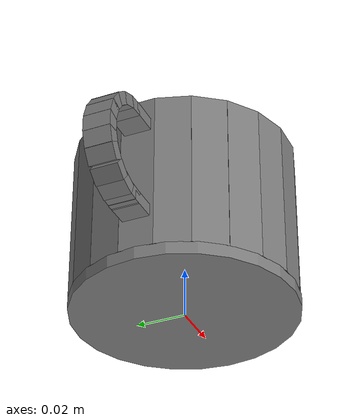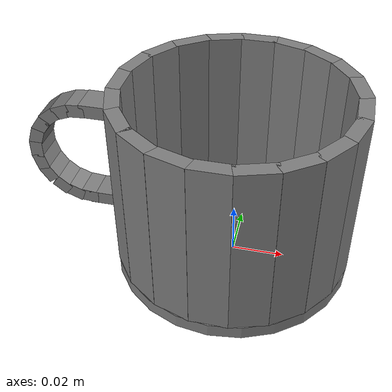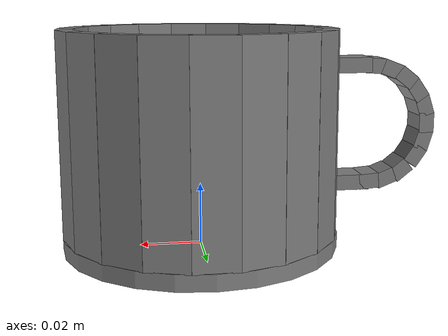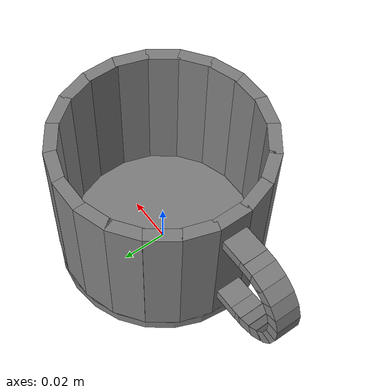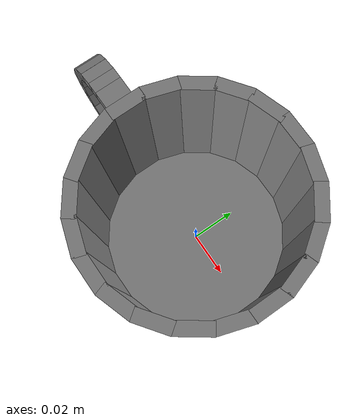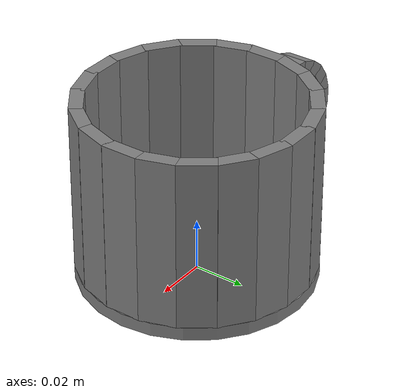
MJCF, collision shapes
<mujoco model="libero_mug">
  <asset>
    <texture file="libero_mug_yellow.png" name="tex-jenga" type="2d" />
    <mesh name="libero_mug" file="libero_mug.obj" scale=".01 .01 .01" />
    <texture name="libero_mug_yellow" file="libero_mug_yellow.png" type="2d" />
    <material name="libero_mug_yellow" texture="libero_mug_yellow" specular="1" shininess="1" />
  </asset>
  <worldbody>
    <body>
      <body name="object">
        <geom type="mesh" density="100" mesh="libero_mug" material="libero_mug_yellow"
          quat="0.7071067690849304 0.7071067690849304 -0.0 -0.0" group="1" contype="0"
          conaffinity="0" />
        <geom type="box" solimp="0.998 0.998 0.001" solref="0.001 1" density="100"
          size="0.0026 0.00704 0.033" group="0" pos="0.0418 0 0.038" euler="0 0 0" />
        <geom type="box" solimp="0.998 0.998 0.001" solref="0.001 1" density="100"
          size="0.0026 0.00704 0.033" group="0" pos="0.0398 0.0129 0.038"
          quat='0.9876883625984192 0.0 0.0 0.15643449127674103' />
        <geom type="box" solimp="0.998 0.998 0.001" solref="0.001 1" density="100"
          size="0.0026 0.00704 0.033" group="0" pos="0.0339 0.0246 0.038"
          quat="0.9510565400123596 0.0 0.0 0.30901700258255005" />
        <geom type="box" solimp="0.998 0.998 0.001" solref="0.001 1" density="100"
          size="0.0026 0.00704 0.033" group="0" pos="0.0246 0.0339 0.038"
          quat="0.8910065293312073 0.0 0.0 0.45399048924446106" />
        <geom type="box" solimp="0.998 0.998 0.001" solref="0.001 1" density="100"
          size="0.0026 0.00704 0.033" group="0" pos="0.0129 0.0398 0.038"
          quat="0.80901700258255 0.0 0.0 0.5877853035926819" />
        <geom type="box" solimp="0.998 0.998 0.001" solref="0.001 1" density="100"
          size="0.0026 0.00704 0.033" group="0" pos="0 0.0418 0.038"
          quat="0.7071067690849304 0.0 0.0 0.7071067690849304" />
        <geom type="box" solimp="0.998 0.998 0.001" solref="0.001 1" density="100"
          size="0.0026 0.00704 0.033" group="0" pos="-0.0129 0.0398 0.038"
          quat="0.5877853035926819 0.0 0.0 0.80901700258255" />
        <geom type="box" solimp="0.998 0.998 0.001" solref="0.001 1" density="100"
          size="0.0026 0.00704 0.033" group="0" pos="-0.0246 0.0339 0.038"
          quat="0.45399048924446106 0.0 0.0 0.8910065293312073" />
        <geom type="box" solimp="0.998 0.998 0.001" solref="0.001 1" density="100"
          size="0.0026 0.00704 0.033" group="0" pos="-0.0339 0.0246 0.038"
          quat="0.30901700258255005 0.0 0.0 0.9510565400123596" />
        <geom type="box" solimp="0.998 0.998 0.001" solref="0.001 1" density="100"
          size="0.0026 0.00704 0.033" group="0" pos="-0.0398 0.0129 0.038"
          quat="0.15643449127674103 0.0 0.0 0.9876883625984192" />
        <geom type="box" solimp="0.998 0.998 0.001" solref="0.001 1" density="100"
          size="0.0026 0.00704 0.033" group="0" pos="-0.0418 0 0.038" quat="0.0 0.0 0.0 1.0" />
        <geom type="box" solimp="0.998 0.998 0.001" solref="0.001 1" density="100"
          size="0.0026 0.00704 0.033" group="0" pos="-0.0398 -0.0129 0.038"
          quat="0.15643449127674103 0.0 0.0 -0.9876883625984192" />
        <geom type="box" solimp="0.998 0.998 0.001" solref="0.001 1" density="100"
          size="0.0026 0.00704 0.033" group="0" pos="-0.0339 -0.0246 0.038"
          quat="0.30901700258255005 0.0 0.0 -0.9510565400123596" />
        <geom type="box" solimp="0.998 0.998 0.001" solref="0.001 1" density="100"
          size="0.0026 0.00704 0.033" group="0" pos="-0.0246 -0.0339 0.038"
          quat="0.45399048924446106 0.0 0.0 -0.8910065293312073" />
        <geom type="box" solimp="0.998 0.998 0.001" solref="0.001 1" density="100"
          size="0.0026 0.00704 0.033" group="0" pos="-0.0129 -0.0398 0.038"
          quat="0.5877853035926819 0.0 0.0 -0.80901700258255" />
        <geom type="box" solimp="0.998 0.998 0.001" solref="0.001 1" density="100"
          size="0.0026 0.00704 0.033" group="0" pos="0 -0.0418 0.038"
          quat="0.7071067690849304 0.0 0.0 -0.7071067690849304" />
        <geom type="box" solimp="0.998 0.998 0.001" solref="0.001 1" density="100"
          size="0.0026 0.00704 0.033" group="0" pos="0.0129 -0.0398 0.038"
          quat="0.80901700258255 0.0 0.0 -0.5877853035926819" />
        <geom type="box" solimp="0.998 0.998 0.001" solref="0.001 1" density="100"
          size="0.0026 0.00704 0.033" group="0" pos="0.0246 -0.0339 0.038"
          quat="0.8910065293312073 0.0 0.0 -0.45399048924446106" />
        <geom type="box" solimp="0.998 0.998 0.001" solref="0.001 1" density="100"
          size="0.0026 0.00704 0.033" group="0" pos="0.0339 -0.0246 0.038"
          quat="0.9510565400123596 0.0 0.0 -0.30901700258255005" />
        <geom type="box" solimp="0.998 0.998 0.001" solref="0.001 1" density="100"
          size="0.0026 0.00704 0.033" group="0" pos="0.0398 -0.0129 0.038"
          quat="0.9876883625984192 0.0 0.0 -0.15643449127674103" />

        <geom type="cylinder" solimp="0.998 0.998 0.001" solref="0.001 1" density="100"
          size="0.045 0.0026" group="0" pos="0 0 0.0026" />
        <body name="handle" pos="-0.056 0 0.0395" quat="0 0 -0.7071068286895752 0.7071067690849304">
          <geom type="box" solimp="0.998 0.998 0.001" solref="0.001 1" density="0.1"
            size="0.0025 0.00328 0.0055" group="0" pos="0.0193 0 0" euler="0 0 0" />
          <geom type="box" solimp="0.998 0.998 0.001" solref="0.001 1" density="0.1"
            size="0.0025 0.00328 0.0055" group="0" pos="0.0184 0.00568 0"
            quat="0.9888865351676941 0.0 0.0 0.148672416806221" />
          <geom type="box" solimp="0.998 0.998 0.001" solref="0.001 1" density="0.1"
            size="0.0025 0.00328 0.0055" group="0" pos="0.0159 0.011 0"
            quat="0.9557929635047913 0.0 0.0 0.2940402925014496" />
          <geom type="box" solimp="0.998 0.998 0.001" solref="0.001 1" density="0.1"
            size="0.0025 0.00328 0.0055" group="0" pos="0.011 0.0159 0"
            quat="0.9014551639556885 0.0 0.0 0.43287262320518494" />
          <geom type="box" solimp="0.998 0.998 0.001" solref="0.001 1" density="0.1"
            size="0.0025 0.00328 0.0055" group="0" pos="0.00568 0.0184 0"
            quat="0.8270806074142456 0.0 0.0 0.56208336353302" />
          <geom type="box" solimp="0.998 0.998 0.001" solref="0.001 1" density="0.1"
            size="0.0025 0.00328 0.0055" group="0" pos="0 0.0193 0"
            quat="0.7343224883079529 0.0 0.0 0.6788007020950317" />

          <geom type="box" solimp="0.998 0.998 0.001" solref="0.001 1" density="0.1"
            size="0.0025 0.00328 0.0055" group="0" pos="0.00144 -0.0192 0"
            quat="0.7313537001609802 0.0 0.0 -0.6819983720779419" />
          <geom type="box" solimp="0.998 0.998 0.001" solref="0.001 1" density="0.1"
            size="0.0025 0.00328 0.0055" group="0" pos="0.00703 -0.0179 0"
            quat="0.8241261839866638 0.0 0.0 -0.56640625" />
          <geom type="box" solimp="0.998 0.998 0.001" solref="0.001 1" density="0.1"
            size="0.0025 0.00328 0.0055" group="0" pos="0.012 -0.0151 0"
            quat="0.8987939953804016 0.0 0.0 -0.43837112188339233" />
          <geom type="box" solimp="0.998 0.998 0.001" solref="0.001 1" density="0.1"
            size="0.0025 0.00328 0.0055" group="0" pos="0.0159 -0.0108 0"
            quat="0.9537169337272644 0.0 0.0 -0.30070579051971436" />
          <geom type="box" solimp="0.998 0.998 0.001" solref="0.001 1" density="0.1"
            size="0.0025 0.00328 0.0055" group="0" pos="0.0184 -0.00568 0"
            quat="0.9876883625984192 0.0 0.0 -0.15643449127674103" />

          <geom type="box" solimp="0.998 0.998 0.001" solref="0.001 1" density="0.1"
            size="0.007 0.0025 0.0055" group="0" pos="-0.007 -0.0195 0" />
          <geom type="box" solimp="0.998 0.998 0.001" solref="0.001 1" density="0.1"
            size="0.007 0.0025 0.0055" group="0" pos="-0.007 0.0195 0" />
        </body>
      </body>
      <site rgba="0 0 0 0" size="0.005" pos="0 0 -0.04" name="bottom_site" />
      <site rgba="0 0 0 0" size="0.005" pos="0 0 0.04" name="top_site" />
      <site rgba="0 0 0 0" size="0.005" pos="0.005 0.005 0" name="horizontal_radius_site" />
    </body>
  </worldbody>
</mujoco>
